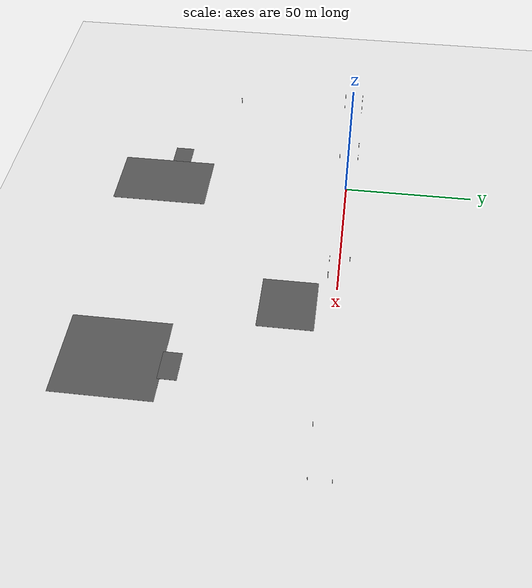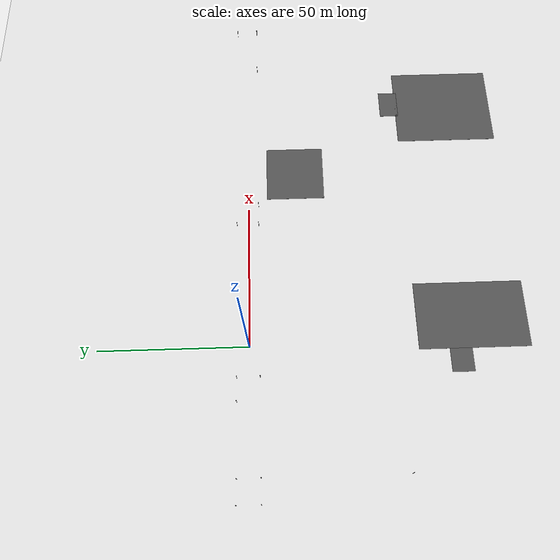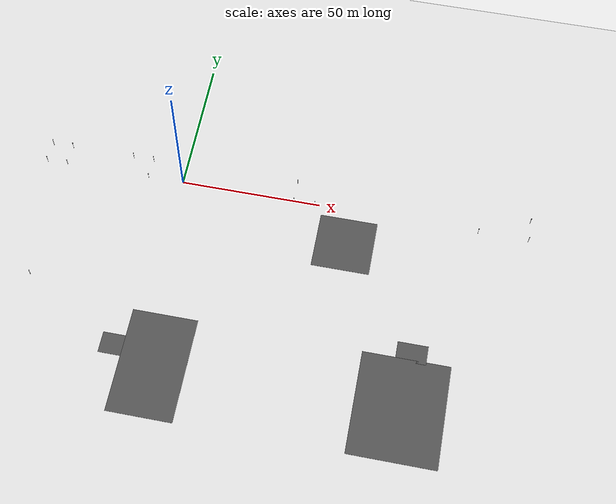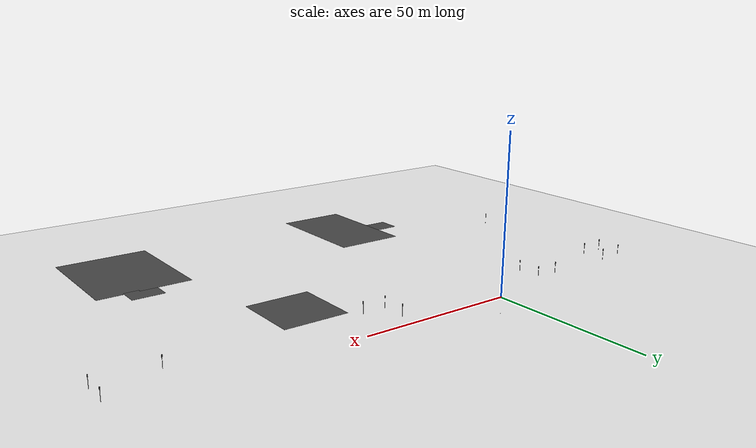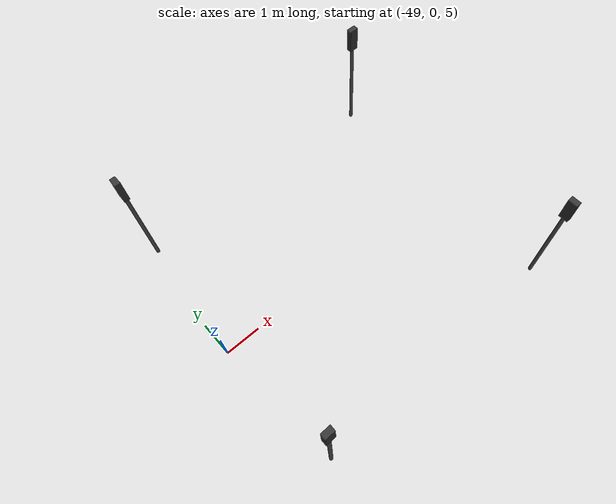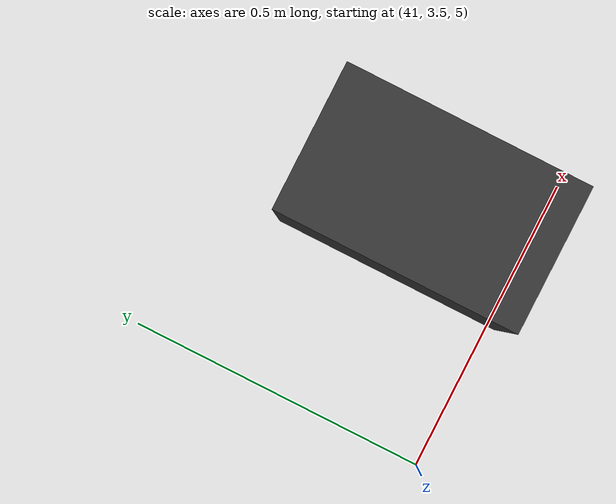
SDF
<sdf version="1.6">
 <world name="default">
  <plugin name="auto_traffic_light" filename="libauto_traffic_light_plugin.so"/>
  <plugin name="joy" filename="libJoyPlugin.so">
   <sticky_buttons>false</sticky_buttons>
   <dead_zone>0.05</dead_zone>
   <rate>60</rate>
   <accumulation_rate>1000</accumulation_rate>
  </plugin>
  <scene>
   <grid>false</grid>
   <origin_visual>false</origin_visual>
   <ambient>0.592 0.624 0.635 1</ambient>
   <sky><clouds><speed>12</speed></clouds></sky>
   <background>0.35 0.35 0.35 1.0</background>
  </scene>
  <physics name="default_physics" default="0" type="ode">
   <max_step_size>0.002</max_step_size>
   <real_time_factor>1</real_time_factor>
   <real_time_update_rate>0</real_time_update_rate>
  </physics>
  <spherical_coordinates>
   <surface_model>EARTH_WGS84</surface_model>
   <latitude_deg>0</latitude_deg>
   <longitude_deg>0</longitude_deg>
   <elevation>0</elevation>
   <heading_deg>0</heading_deg>
  </spherical_coordinates>
  <light type="directional" name="sun">
   <pose>0 0 1000 0 0 0</pose>
   <diffuse>0.8 0.8 0.8 1</diffuse>
   <specular>0.5 0.5 0.5 1</specular>
   <attenuation>
    <range>1000</range>
    <constant>0.9</constant>
    <linear>0.01</linear>
    <quadratic>0.001</quadratic>
   </attenuation>
   <direction>-0.5 0.1 -0.4</direction>
  </light>
  <model name="shaderbox">
   <pose>0 0 -5 0 0 0</pose>
   <static>true</static>
   <link name="link">
    <visual name="visual">
     <geometry><box><size>0.1 0.1 0.1</size></box></geometry>
     <material>
      <script><uri>file://media/materials/scripts/citysim.material</uri><name>CitySim/ShinyGrey</name></script>
     </material>
     <plugin name="bloom" filename="libBloomVisualPlugin.so"/>
     <plugin name="lensflare" filename="libLensFlareVisualPlugin.so"/>
    </visual>
   </link>
  </model>
  <model name="ground_plane">
   <static>true</static>
   <pose>0 0 5.01 0 0 0</pose>
   <link name="link">
    <collision name="collision">
     <geometry><plane><normal>0 0 1</normal><size>1000 1000</size></plane></geometry>
     <surface><friction><ode><mu>100</mu><mu2>50</mu2></ode></friction></surface>
    </collision>
    <visual name="visual">
     <cast_shadows>false</cast_shadows>
     <geometry><plane><normal>0 0 1</normal><size>1000 1000</size></plane></geometry>
     <material>
      <script><uri>file://media/materials/scripts/gazebo.material</uri><name>Gazebo/Grey</name></script>
     </material>
    </visual>
   </link>
  </model>
  <model name="asphalt_plane_138">
   <static>true</static>
   <pose>61.581
    -16.664
    5.01
    0
    0
    0</pose>
   <link name="link">
    <collision name="collision">
     <geometry><box><size>20
            20
            0.1</size></box></geometry>
    </collision>
    <visual name="visual">
     <geometry><box><size>20
            20
            0.05</size></box></geometry>
     <material>
      <script>
       <uri>model://asphalt_plane/materials/scripts</uri>
       <uri>model://asphalt_plane/materials/textures</uri>
       <name>vrc/asphalt</name>
      </script>
     </material>
    </visual>
   </link>
  </model>
  <model name="asphalt_plane_148">
   <static>true</static>
   <pose>88.62
    -72.49
    5.01
    0
    0
    0</pose>
   <link name="link">
    <collision name="collision">
     <geometry><box><size>29.378
            35.24
            0.1</size></box></geometry>
    </collision>
    <visual name="visual">
     <geometry><box><size>29.378
            35.24
            0.05</size></box></geometry>
     <material>
      <script>
       <uri>model://asphalt_plane/materials/scripts</uri>
       <uri>model://asphalt_plane/materials/textures</uri>
       <name>vrc/asphalt</name>
      </script>
     </material>
    </visual>
   </link>
  </model>
  <model name="asphalt_plane_149">
   <static>true</static>
   <pose>90.0
    -52.48
    5.01
    0
    0
    0</pose>
   <link name="link">
    <collision name="collision">
     <geometry><box><size>10.15
            6.61
            0.1</size></box></geometry>
    </collision>
    <visual name="visual">
     <geometry><box><size>10.15
            6.61
            0.05</size></box></geometry>
     <material>
      <script>
       <uri>model://asphalt_plane/materials/scripts</uri>
       <uri>model://asphalt_plane/materials/textures</uri>
       <name>vrc/asphalt</name>
      </script>
     </material>
    </visual>
   </link>
  </model>
  <model name="asphalt_plane_321">
   <static>true</static>
   <pose>7.4
    -72.69
    5.01
    0
    0
    0</pose>
   <link name="link">
    <collision name="collision">
     <geometry><box><size>22.248
            36.24
            0.1</size></box></geometry>
    </collision>
    <visual name="visual">
     <geometry><box><size>22.248
            36.24
            0.05</size></box></geometry>
     <material>
      <script>
       <uri>model://asphalt_plane/materials/scripts</uri>
       <uri>model://asphalt_plane/materials/textures</uri>
       <name>vrc/asphalt</name>
      </script>
     </material>
    </visual>
   </link>
  </model>
  <model name="asphalt_plane_322">
   <static>true</static>
   <pose>-7.51
    -67.99
    5.01
    0
    0
    0</pose>
   <link name="link">
    <collision name="collision">
     <geometry><box><size>7.63
            7.24
            0.1</size></box></geometry>
    </collision>
    <visual name="visual">
     <geometry><box><size>7.63
            7.24
            0.05</size></box></geometry>
     <material>
      <script>
       <uri>model://asphalt_plane/materials/scripts</uri>
       <uri>model://asphalt_plane/materials/textures</uri>
       <name>vrc/asphalt</name>
      </script>
     </material>
    </visual>
   </link>
  </model>
  <include>
   <name>stop_light_post_474</name>
   <pose>-41.3
      -48.7
      5.01
      0
      0
      -1.57</pose>
   <uri>model://stop_light_post</uri>
  </include>
  <include>
   <name>stop_light_post_475</name>
   <pose>-41.3
      -3.7
      5.01
      0
      0
      -1.57</pose>
   <uri>model://stop_light_post</uri>
  </include>
  <include>
   <name>stop_light_post_476</name>
   <pose>-11.3
      -3.7
      5.01
      0
      0
      -1.57</pose>
   <uri>model://stop_light_post</uri>
  </include>
  <include>
   <name>stop_light_post_477</name>
   <pose>48.7
      -3.7
      5.01
      0
      0
      -1.57</pose>
   <uri>model://stop_light_post</uri>
  </include>
  <include>
   <name>stop_light_post_478</name>
   <pose>123.7
      -3.7
      5.01
      0
      0
      -1.57</pose>
   <uri>model://stop_light_post</uri>
  </include>
  <include>
   <name>stop_light_post_479</name>
   <pose>-48.7
      3.7
      5.01
      0
      0
      1.57</pose>
   <uri>model://stop_light_post</uri>
  </include>
  <include>
   <name>stop_light_post_480</name>
   <pose>-18.7
      3.7
      5.01
      0
      0
      1.57</pose>
   <uri>model://stop_light_post</uri>
  </include>
  <include>
   <name>stop_light_post_481</name>
   <pose>41.3
      3.7
      5.01
      0
      0
      1.57</pose>
   <uri>model://stop_light_post</uri>
  </include>
  <include>
   <name>stop_light_post_482</name>
   <pose>-41.3
      3.7
      5.01
      0
      0
      0.0</pose>
   <uri>model://stop_light_post</uri>
  </include>
  <include>
   <name>stop_light_post_483</name>
   <pose>-11.3
      3.7
      5.01
      0
      0
      0.0</pose>
   <uri>model://stop_light_post</uri>
  </include>
  <include>
   <name>stop_light_post_484</name>
   <pose>123.7
      3.7
      5.01
      0
      0
      0.0</pose>
   <uri>model://stop_light_post</uri>
  </include>
  <include>
   <name>stop_light_post_485</name>
   <pose>-48.7
      -3.7
      5.01
      0
      0
      3.14</pose>
   <uri>model://stop_light_post</uri>
  </include>
  <include>
   <name>stop_light_post_486</name>
   <pose>41.3
      -3.7
      5.01
      0
      0
      3.14</pose>
   <uri>model://stop_light_post</uri>
  </include>
  <include>
   <name>stop_light_post_487</name>
   <pose>106.3
      -3.7
      5.01
      0
      0
      3.14</pose>
   <uri>model://stop_light_post</uri>
  </include>
 </world>
</sdf>

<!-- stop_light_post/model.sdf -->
<sdf version="1.6">
  <model name="stop_light_post">
    <static>true</static>

    <!-- Main post -->
    <link name="post">
      <pose>0 0 0 0 0 0</pose>

      <visual name="post_visual">
        <pose>0 0 1.5 0 0 0</pose>
        <geometry>
          <cylinder>
            <radius>0.05</radius>
            <length>3.0</length>
          </cylinder>
        </geometry>
        <material>
          <ambient>0.2 0.2 0.2 1</ambient>
          <diffuse>0.3 0.3 0.3 1</diffuse>
        </material>
      </visual>

      <collision name="post_collision">
        <pose>0 0 1.5 0 0 0</pose>
        <geometry>
          <cylinder>
            <radius>0.05</radius>
            <length>3.0</length>
          </cylinder>
        </geometry>
      </collision>
    </link>

    <!-- Traffic light housing -->
    <link name="light_box">
      <pose>0 0 3.2 0 0 0</pose>

      <visual name="box_visual">
        <geometry>
          <box>
            <size>0.25 0.15 0.7</size>
          </box>
        </geometry>
        <material>
          <ambient>0.1 0.1 0.1 1</ambient>
          <diffuse>0.2 0.2 0.2 1</diffuse>
        </material>
      </visual>

      <!-- Red light (top) -->
      <visual name="red">
        <pose>0 0 0.25 0 0 0</pose>
        <geometry>
          <sphere>
            <radius>0.06</radius>
          </sphere>
        </geometry>
        <material>
          <ambient>0.3 0 0 1</ambient>
          <diffuse>0.8 0 0 1</diffuse>
          <emissive>0.3 0 0 1</emissive>
        </material>
      </visual>

      <!-- Yellow light (middle) -->
      <visual name="yellow">
        <pose>0 0 0 0 0 0</pose>
        <geometry>
          <sphere>
            <radius>0.06</radius>
          </sphere>
        </geometry>
        <material>
          <ambient>0.3 0.3 0 1</ambient>
          <diffuse>0.8 0.8 0 1</diffuse>
          <emissive>0.3 0.3 0 1</emissive>
        </material>
      </visual>

      <!-- Green light (bottom) -->
      <visual name="green">
        <pose>0 0 -0.25 0 0 0</pose>
        <geometry>
          <sphere>
            <radius>0.06</radius>
          </sphere>
        </geometry>
        <material>
          <ambient>0 0.3 0 1</ambient>
          <diffuse>0 0.8 0 1</diffuse>
          <emissive>0 0.3 0 1</emissive>
        </material>
      </visual>

      <collision name="box_collision">
        <geometry>
          <box>
            <size>0.25 0.15 0.7</size>
          </box>
        </geometry>
      </collision>
    </link>

    <!-- Fixed joint between post and light box -->
    <joint name="post_to_box" type="fixed">
      <parent>post</parent>
      <child>light_box</child>
    </joint>
  </model>
</sdf>
